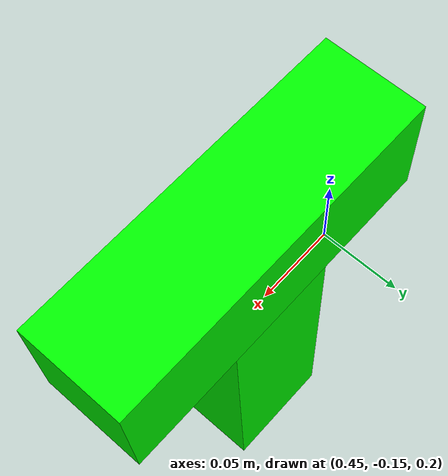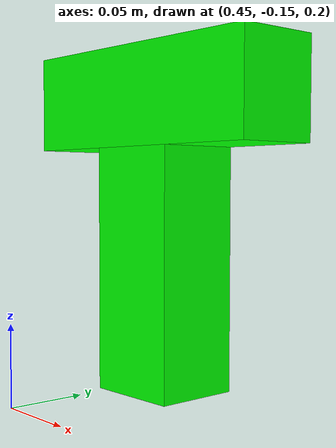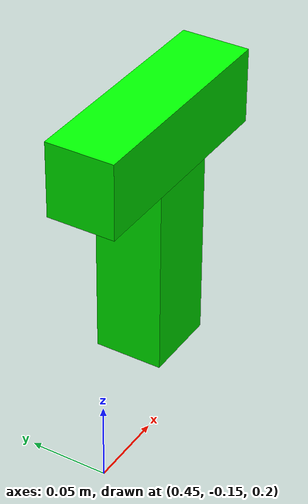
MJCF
<mujoco model="T1">
  <option gravity="0 0 0"/>
  <worldbody>
    <body name="T1" pos="0.55 -0.12 0.225">
        <joint name="T1_free" type="free"/>
        <geom name="T1_stem" type="box" size="0.025 0.0225 0.0625" pos="0 0 0.0625" rgba="0 1 0 1" contype="1" conaffinity="1"/>
        <geom name="T1_bar" type="box" size="0.075 0.0225 0.025" pos="0 0 0.15" rgba="0 1 0 1" contype="1" conaffinity="1"/>
    </body>
  </worldbody>
</mujoco>
